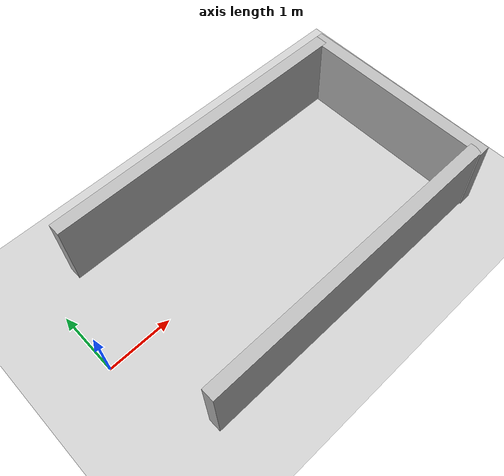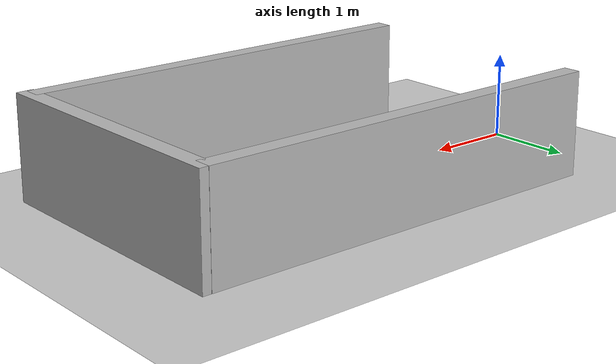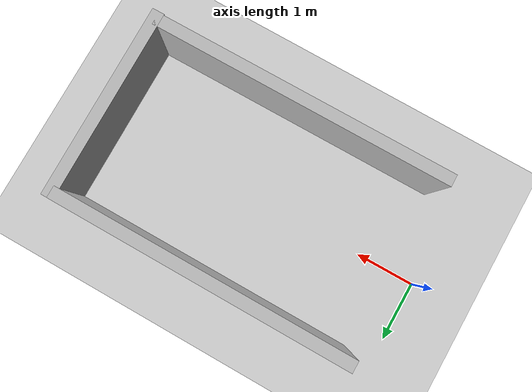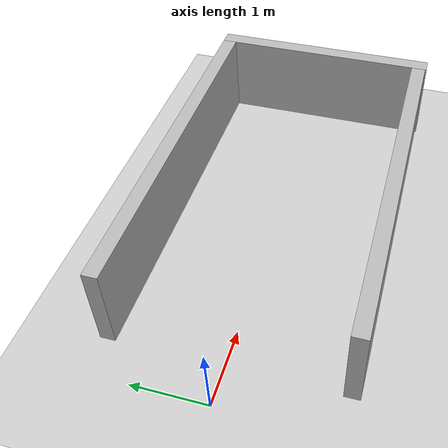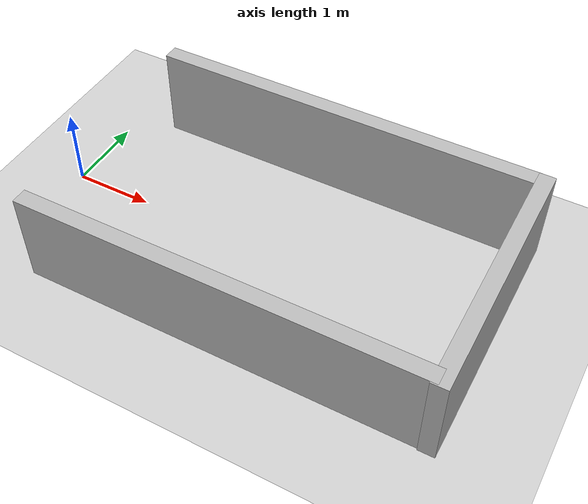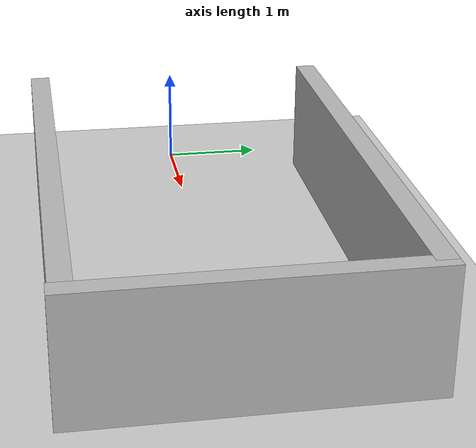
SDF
<?xml version="1.0"?>
<sdf version="1.6">
  <world name="v2-04g-r1-maneuver-s4933">
    <gravity>0 0 -9.81</gravity>
    <physics name="v2_deterministic" type="ode">
      <max_step_size>0.002</max_step_size>
      <real_time_update_rate>500</real_time_update_rate>
    </physics>
    <include>
      <uri>model://sun</uri>
    </include>
    <include>
      <uri>model://ground_plane</uri>
    </include>
    <model name="bay-left">
      <static>true</static>
      <pose>3.001465966 1.493831697 0.600000000 0 0 0.000215428</pose>
      <link name="link">
        <collision name="collision">
          <geometry>
            <box>
              <size>5.000000 0.200000 1.200000</size>
            </box>
          </geometry>
        </collision>
        <visual name="visual">
          <geometry>
            <box>
              <size>5.000000 0.200000 1.200000</size>
            </box>
          </geometry>
        </visual>
      </link>
    </model>
    <model name="bay-right">
      <static>true</static>
      <pose>3.001636617 -1.501073149 0.600000000 0 0 0.004267728</pose>
      <link name="link">
        <collision name="collision">
          <geometry>
            <box>
              <size>5.000000 0.200000 1.200000</size>
            </box>
          </geometry>
        </collision>
        <visual name="visual">
          <geometry>
            <box>
              <size>5.000000 0.200000 1.200000</size>
            </box>
          </geometry>
        </visual>
      </link>
    </model>
    <model name="bay-back">
      <static>true</static>
      <pose>5.511238904 -0.007107244 0.600000000 0 0 0.004409942</pose>
      <link name="link">
        <collision name="collision">
          <geometry>
            <box>
              <size>0.200000 3.200000 1.200000</size>
            </box>
          </geometry>
        </collision>
        <visual name="visual">
          <geometry>
            <box>
              <size>0.200000 3.200000 1.200000</size>
            </box>
          </geometry>
        </visual>
      </link>
    </model>
  </world>
</sdf>
